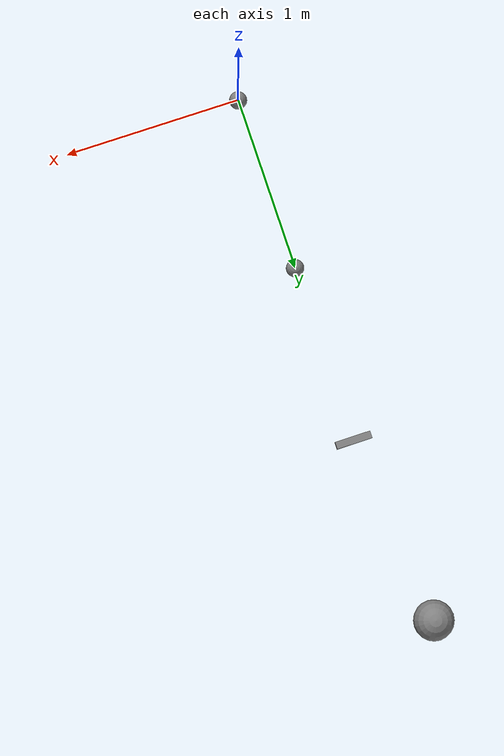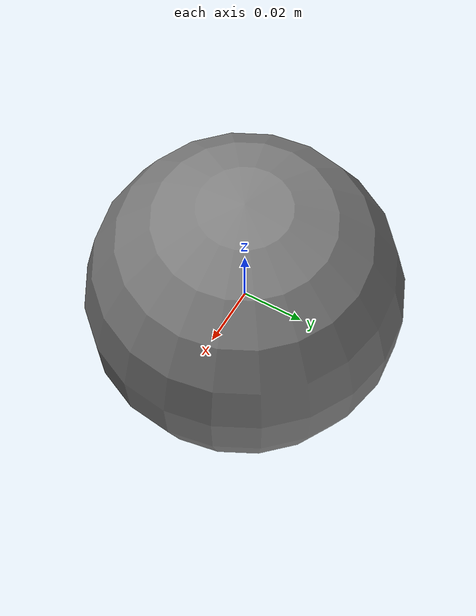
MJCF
<mujoco>
  <option timestep="0.001" gravity="0 0 0"/>
  <worldbody>
    <body name="s" pos="0 0 0">
      <joint name="slide" type="slide" axis="1 0 0"/>
      <geom type="sphere" size="0.05" mass="1"/>
    </body>
    <body name="b" pos="0 1 0">
      <joint name="ball" type="ball"/>
      <geom type="sphere" size="0.05" mass="1"/>
    </body>
    <body name="h" pos="0 2 0">
      <joint name="hinge" type="hinge" axis="0 0 1"/>
      <geom type="box" size="0.1 0.02 0.02" mass="1"/>
    </body>
    <body name="f" pos="0 3 1">
      <freejoint/>
      <geom type="sphere" size="0.1" mass="1"/>
    </body>
  </worldbody>
</mujoco>
